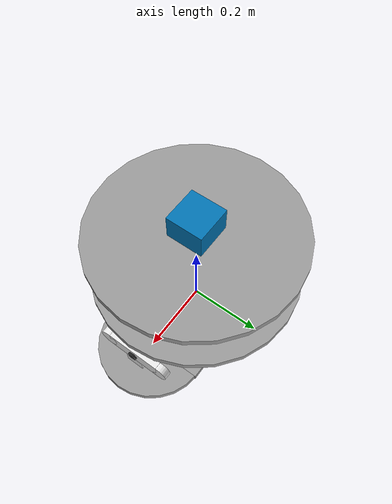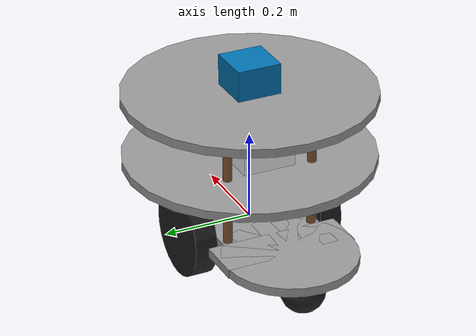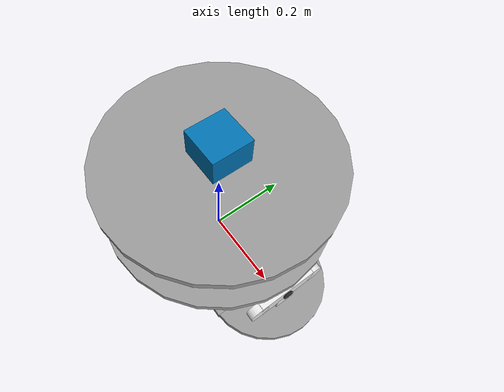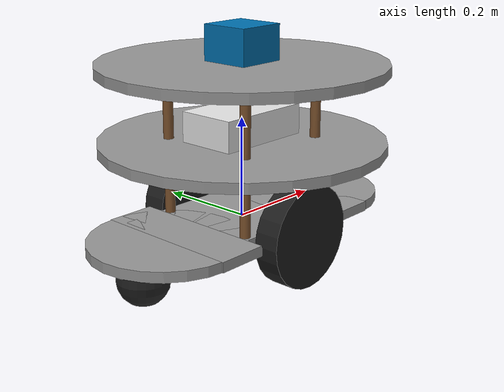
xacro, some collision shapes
<?xml version="1.0"?>

   <robot name="sapi" xmlns:xacro="http://www.ros.org/wiki/xacro">

    <xacro:include filename="$(find description_robot)/models/material.xacro"/>
    <xacro:include filename="$(find description_robot)/models/param.xacro"/>
    <xacro:include filename="$(find description_robot)/models/model.gazebo"/>

    <link name='chassis'>
        <pose>0 0 0.1 0 0 0</pose>
            <inertial>
                <origin xyz="${bodybawah}" rpy="0.0 0.0 0.0"/>
                <mass value="5.0"/>
                <inertia
                    ixx="0.0" ixy="0.0"
                    ixz="0.0" iyy="0.0"
                    iyz="0.0" izz="0.0"/>
            </inertial>

            <!-- body lingkaran bawah -->
            <visual name='chassis_visual_1'>
                <origin xyz="${bodybawah}" rpy="0.0 0.0 0.0"/>
                <geometry>
                    <box size="0.4 0.23 0.02"/>
                </geometry>
                <material name="grey"/>
            </visual>

            <collision name='chasis_collosin_1'>
                <origin xyz="${bodybawah}" rpy="0.0 0.0 0.0"/>
                <geometry>
                    <box size="0.4 0.23 0.02"/>
                </geometry>
            </collision>

            <!-- body linkaran tengah -->
            <visual name='chassis_visual_2'>
                <origin xyz="${bodytengah}" rpy="0.0 0.0 0.0"/>
                    <geometry>
                        <cylinder radius="${width1}" length="${bodylen1}"/>
                    </geometry>
                <material name="grey"/>
            </visual>

            <collision name='chasis_collosin_2'>
                <origin xyz="${bodytengah}" rpy="0.0 0.0 0.0"/>
                <geometry>
                    <cylinder radius="${width1}" length="${bodylen1}"/>
                </geometry>
            </collision>

            <!-- Jetson -->
            <visual name='chassis_visual_1'>
                <origin xyz="${Jetson}" rpy="0.0 0.0 0.0"/>
                <geometry>

                    <box size="0.2 0.12 0.08"/>
                </geometry>
                <material name="white"/>
            </visual>

            <collision name='chasis_collosin_1'>
                <origin xyz="${Jetson}" rpy="0.0 0.0 0.0"/>
                <geometry>

                    <box size="0.2 0.12 0.08"/>
                </geometry>
            </collision>

            <!-- body atas -->
            <visual name='chassis_visual_3'>
                <origin xyz="${bodyatas}" rpy="0.0 0.0 0.0"/>
                    <geometry>
                        <cylinder radius="${width1}" length="${bodylen1}"/>
                    </geometry>
                <material name="grey"/>
            </visual>

            <collision name='chasis_collosin_3'>
                <origin xyz="${bodyatas}" rpy="0.0 0.0 0.0"/>
                <geometry>
                    <cylinder radius="${width1}" length="${bodylen1}"/>
                </geometry>
            </collision>

            <!-- body -->
            <visual name='chassis_visual_depan'>
                <origin xyz="${bodybawah_depan}" rpy="0.0 0.0 0.0"/>
                <geometry>
                    <cylinder radius="${width}" length="${bodylen}"/>
                </geometry>
                <material name="grey"/>
            </visual>

            <collision name='chasis_collosin_depan'>
                <origin xyz="${bodybawah_depan}" rpy="0.0 0.0 0.0"/>
                <geometry>
                    <cylinder radius="${width}" length="${bodylen}"/>
                </geometry>
            </collision>

            <visual name='chassis_visual_depan'>
                <origin xyz="0.16 0.0 0.0" rpy="0.0 0.0 0.0"/>
                <geometry>
                    <box size="0.1 0.3 0.02"/>
                </geometry>
                <material name="grey"/>
            </visual>

            <collision name='chasis_collosin_depan'>
                <origin xyz="0.16 0.0 0.0" rpy="0.0 0.0 0.0"/>
                <geometry>
                    <box size="0.1 0.3 0.02"/>
                </geometry>
            </collision>

            <visual name='chassis_visual_belakang'>
                <origin xyz="${bodybawah_belakang}" rpy="0.0 0.0 0.0"/>
                <geometry>
                    <cylinder radius="${width}" length="${bodylen}"/>
                </geometry>
                <material name="grey"/>
            </visual>

            <collision name='chasis_collosin_belakang'>
                <origin xyz="${bodybawah_belakang}" rpy="0.0 0.0 0.0"/>
                <geometry>
                    <cylinder radius="${width}" length="${bodylen}"/>
                </geometry>
            </collision>

            <visual name='chassis_visual_belakang'>
                <origin xyz="-0.16 0.0 0.0" rpy="0.0 0.0 0.0"/>
                <geometry>
                    <box size="0.1 0.3 0.02"/>
                </geometry>
                <material name="grey"/>
            </visual>

            <collision name='chasis_collosin_belakang'>
                <origin xyz="-0.16 0.0 0.0" rpy="0.0 0.0 0.0"/>
                <geometry>
                    <box size="0.1 0.3 0.02"/>
                </geometry>
            </collision>
            <!-- END BODY -->

            <!-- Spacer body -->
            <visual name='spacer'>
                <origin xyz="0.1 0.1 0.15" rpy="0.0 0.0 0.0"/>
                    <geometry>
                        <cylinder radius="${width_spacer}" length="${bodylen_spacer}"/>
                    </geometry>
                    <material name="brown"/>
            </visual>

            <collision name='spacer'>
                <origin xyz="0.1 0 0.15" rpy="0.0 0.0 0.0"/>
                    <geometry>
                        <cylinder radius="${width_spacer}" length="${bodylen_spacer}"/>
                    </geometry>
            </collision>

            <visual name='spacer_2'>
                <origin xyz="-0.1 -0.1 0.15" rpy="0.0 0.0 0.0"/>
                    <geometry>
                        <cylinder radius="${width_spacer}" length="${bodylen_spacer}"/>
                    </geometry>
                    <material name="brown"/>
            </visual>

            <collision name='spacer_2'>
                <origin xyz="-0.1 -0.1 0.15" rpy="0.0 0.0 0.0"/>
                    <geometry>
                        <cylinder radius="${width_spacer}" length="${bodylen_spacer}"/>
                    </geometry>
            </collision>

            <visual name='spacer_3'>
                <origin xyz="0.1 -0.1 0.15" rpy="0.0 0.0 0.0"/>
                    <geometry>
                        <cylinder radius="${width_spacer}" length="${bodylen_spacer}"/>
                    </geometry>
                    <material name="brown"/>
            </visual>

            <collision name='spacer_3'>
                <origin xyz="0.1 -0.1 0.15" rpy="0.0 0.0 0.0"/>
                    <geometry>
                        <cylinder radius="${width_spacer}" length="${bodylen_spacer}"/>
                    </geometry>
            </collision>

            <visual name='spacer_4'>
                <origin xyz="-0.1 0.1 0.15" rpy="0.0 0.0 0.0"/>
                    <geometry>
                        <cylinder radius="${width_spacer}" length="${bodylen_spacer}"/>
                    </geometry>
                    <material name="brown"/>
            </visual>

            <collision name='spacer_4'>
                <origin xyz="-0.1 0.1 0.15" rpy="0.0 0.0 0.0"/>
                    <geometry>
                        <cylinder radius="${width_spacer}" length="${bodylen_spacer}"/>
                    </geometry>
            </collision>
            <!-- END SPACER -->

            <!-- Box camera -->
            <visual name="box_camera">
                <origin xyz="0.265 0 0.07" rpy="0.0 0.0 0.0"/>
                <geometry>
                    <box size="0.02 0.15 0.05"/>
                </geometry>
                <material name="white"/>
            </visual>

            <collision>
                <origin xyz="0.265 0 0.07" rpy="0.0 0.0 0.0"/>
                <geometry>
                    <box size="0.02 0.15 0.05"/>
                </geometry>
            </collision>

            <visual name="cycle_camera_1">
                <origin xyz="0.265 0.08 0.07" rpy="1.5707 0 1.5707"/>
                <geometry>
                    <cylinder radius="0.025" length="0.02"/>
                </geometry>
                <material name="white"/>
            </visual>

            <collision>
                <origin xyz="0.265 0.08 0.07" rpy="1.5707 0 1.5707"/>
                <geometry>
                    <cylinder radius="0.025" length="0.02"/>
                </geometry>
            </collision>

            <visual name="cycle_camera_1">
                <origin xyz="0.265 -0.08 0.07" rpy="1.5707 0 1.5707"/>
                <geometry>
                    <cylinder radius="0.025" length="0.02"/>
                </geometry>
                <material name="white"/>
            </visual>

            <collision>
                <origin xyz="0.265 -0.08 0.07" rpy="1.5707 0 1.5707"/>
                <geometry>
                    <cylinder radius="0.025" length="0.02"/>
                </geometry>
            </collision>

            <visual name="tiang">
                <origin xyz="0.265 0 0.03" rpy="0.0 0.0 0.0"/>
                <geometry>
                    <box size="0.02 0.05 0.05"/>
                </geometry>
                <material name="white"/>
            </visual>

            <collision>
                <origin xyz="0.265 0 0.03" rpy="0.0 0.0 0.0"/>
                <geometry>
                    <box size="0.02 0.05 0.05"/>
                </geometry>
            </collision>
            <!-- END Box -->

             <!-- Roda penyeimbang depan -->
            <visual name='cirle_front'>
                <origin xyz="0.26 0 -0.05" rpy="0.0 0.0 0.0"/>
                <geometry>
                    <sphere radius="0.05"/>
                </geometry>
                <material name="black"/>
            </visual>

            <collision name='collisin_circle_front'>
                <origin xyz="0.26 0 -0.05" rpy="0.0 0.0 0.0"/>
                <geometry>
                    <sphere radius="0.05"/>
                </geometry>
            </collision>

            <!-- Roda penyeimbang belakang -->
            <visual name='cirle_rear'>
                <origin xyz="-0.26 0 -0.050" rpy="0.0 0.0 0.0"/>
                <geometry>
                    <sphere radius="0.05"/>
                </geometry>
                <material name="black"/>
            </visual>

            <collision name='collisin_circle_rear'>
                <origin xyz="-0.26 0 -0.050" rpy="0.0 0.0 0.0"/>
                <geometry>
                    <sphere radius="0.05"/>
                </geometry>
            </collision>
      </link>

      <!-- Roda kiri -->
      <link name="left_wheel">
        <inertial>
            <origin xyz="0 0 0" rpy="0 1.5707 1.5707"/>
            <mass value="5"/>
            <inertia
              ixx=".1" ixy="0.0" ixz="0.0"
              iyy=".1" iyz="0.0"
              izz=".1"/>
          </inertial>

        <visual name="left_wheel_visual">
            <origin xyz="0 0.0 0.0" rpy="0 1.5707 1.5707"/>
            <geometry>
              <cylinder radius="${wheels_radius}" length="${wheels_length}"/>
            </geometry>
            <material name="black"/>
        </visual>

        <collision name="collision">
          <origin xyz="0 0.0 0.0" rpy="0 1.5707 1.5707"/>
          <geometry>
            <cylinder radius="${wheels_radius}" length="${wheels_length}"/>
          </geometry>
        </collision>
      </link>

      <!-- Roda kanan -->
      <link name="right_wheel">
        <inertial>
            <origin xyz="0 0 0" rpy="0 1.5707 1.5707"/>
            <mass value="5"/>
            <inertia
              ixx=".1" ixy="0.0" ixz="0.0"
              iyy=".1" iyz="0.0"
              izz=".1"/>
        </inertial>

        <visual name="right_wheel_visual">
            <origin xyz="0 0.0 0.0" rpy="0 1.5707 1.5707"/>
            <geometry>
                <cylinder radius="${wheels_radius}" length="${wheels_length}"/>
            </geometry>
            <material name="black"/>
        </visual>

        <collision name="collision">
          <origin xyz="0 0.0 0.0" rpy="0 1.5707 1.5707"/>
          <geometry>
            <cylinder radius="${wheels_radius}" length="${wheels_length}"/>
          </geometry>
        </collision>
      </link>

      <joint type="continuous" name="left_wheel_hinge">
        <origin xyz="0.0 0.15 0.0" rpy="0 0 0"/>
        <!--origin xyz="0.1 0.13 0" rpy="0 1.5707 1.5707"/-->
        <child link="left_wheel"/>
        <parent link="chassis"/>
        <axis xyz="0 1 0" rpy="0 0 0"/>
        <joint_properties damping="0.0" friction="0.0"/>
      </joint>

      <joint type="continuous" name="right_wheel_hinge">
        <origin xyz="0 -0.15 0.0" rpy="0 0 0"/>
        <!--origin xyz="0.1 -0.13 0" rpy="0 1.5707 1.5707"/-->
        <child link="right_wheel"/>
        <parent link="chassis"/>
        <axis xyz="0 1 0" rpy="0 0 0"/>
        <joint_properties damping="0.0" friction="0.0"/>
      </joint>

      <link name="camera">
        <collision>
          <origin xyz="0 0 0" rpy="1.5707 0 1.5707"/>
          <geometry>

            <cylinder radius="0.013" length="0.01"/>
          </geometry>
        </collision>

        <visual>
          <origin xyz="0 0 0" rpy="1.5707 0 1.5707"/>
          <geometry>

            <cylinder radius="0.013" length="0.01"/>
          </geometry>
          <material name="black"/>
        </visual>

        <inertial>
          <mass value="${cameraMass}" />
          <origin xyz="0 0 0" rpy="0 0 0"/>

          <inertia ixx="1e-6" ixy="0" ixz="0" iyy="1e-6" iyz="0" izz="1e-6" />
        </inertial>
      </link>

      <joint name="camera_joint" type="fixed">
        <axis xyz="0 1 0" />
        <origin xyz="0.275 0 0.07" rpy="0 0 0"/>
        <parent link="chassis"/>
        <child link="camera"/>
      </joint>

      <!-- Add a Hokuyo Laser -->
    <link name="laser_link">
      <collision>
        <origin xyz="0 0 0" rpy="0 0 0"/>
        <geometry>
          <box size="${x_hokuyo} ${y_hokuyo} ${z_hokuyo}"/>
        </geometry>
      </collision>

      <visual>
        <origin xyz="0 0 0" rpy="0 0 0"/>
        <geometry>
          <mesh filename="package://description_robot/meshes/hokuyo.dae"/>
        </geometry>
      </visual>

      <inertial>
        <mass value="1e-5" />
        <origin xyz="0 0 0" rpy="0 0 0"/>
        <inertia ixx="1e-6" ixy="0" ixz="0" iyy="1e-6" iyz="0" izz="1e-6" />
      </inertial>
    </link>

    <joint name="hokuyo_joint" type="fixed">
      <axis xyz="0 1 0" />
      <origin xyz="0.0 0 0.33" rpy="0 0 0"/>
      <parent link="chassis"/>
      <child link="laser_link"/>
    </joint>

  </robot>

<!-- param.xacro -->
<robot xmlns:xacro="http://www.ros.org/wiki/xacro" name="burger">

        <xacro:property name="properties" value="${load_yaml(package + '/config/config.yaml')}"/>

        <xacro:property name="width" value="0.149"/>
        <xacro:property name="bodylen" value="0.02" />

        <xacro:property name="width1" value="0.28"/>
        <xacro:property name="bodylen1" value="0.02" />

        <xacro:property name="boxbawah" value="0.5 0.3 0.05"/>

        <xacro:property name="width_spacer" value="0.01"/>
        <xacro:property name="bodylen_spacer" value="0.3" />

        <xacro:property name="bodybawah" value="0.0 0.0 0.0"/>
        <xacro:property name="Jetson" value="0.0 0.0 0.18"/>
        <xacro:property name="bodybawah_depan" value="0.20 0.0 0.0"/>
        <xacro:property name="bodybawah_belakang" value="-0.20 0.0 0.0"/>
        <xacro:property name="bodytengah" value="0.0 0.0 0.15"/>
        <xacro:property name="bodyatas" value="0.0 0.0 0.3"/>

        <xacro:property name="wheels_radius" value="0.1"/>
        <xacro:property name="wheels_length" value="0.05"/>

        <xacro:property name="camera_size_x" value="0.05"/>
        <xacro:property name="camera_size_y" value="0.1"/>
        <xacro:property name="camera_size_z" value="0.05"/>

        <xacro:property name="cameraSize"  value="0.05"/>
        <xacro:property name="cameraMass"  value="0.1"/>
        <xacro:property name="height3"     value="0.05"/>
        <xacro:property name="axel_offset" value="1"/>

          <!-- Parameters for the Hukoyu Laser -->
        <xacro:property name="x_hokuyo" value="0.1" />
        <xacro:property name="y_hokuyo" value="0.1" />
        <xacro:property name="z_hokuyo" value="0.1" />

        <xacro:property name="height3" value="0.05"/>
        <xacro:property name="axel_offset" value="0.05"/>

        <!-- Parameters for the IMU -->
        <xacro:property name="x_imu" value="0.01" />
        <xacro:property name="y_imu" value="0.01" />
        <xacro:property name="z_imu" value="0.01" />

    </robot>
